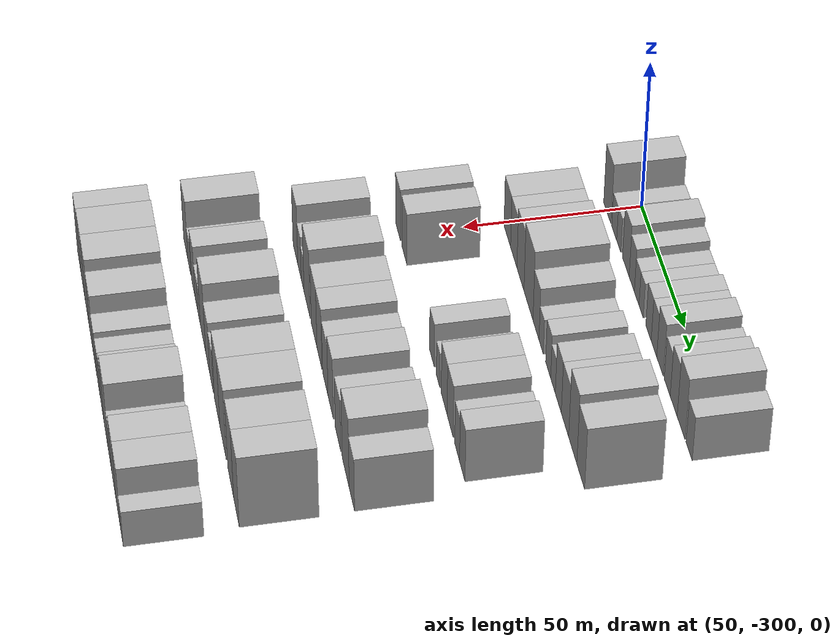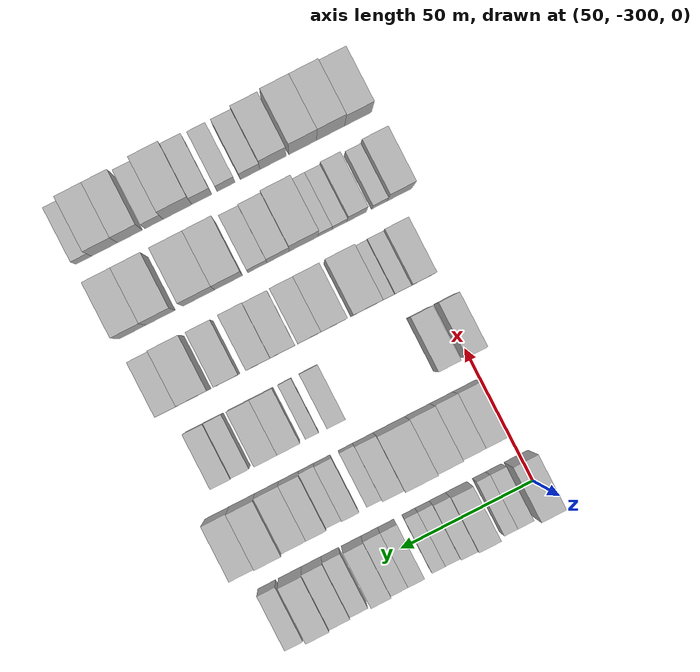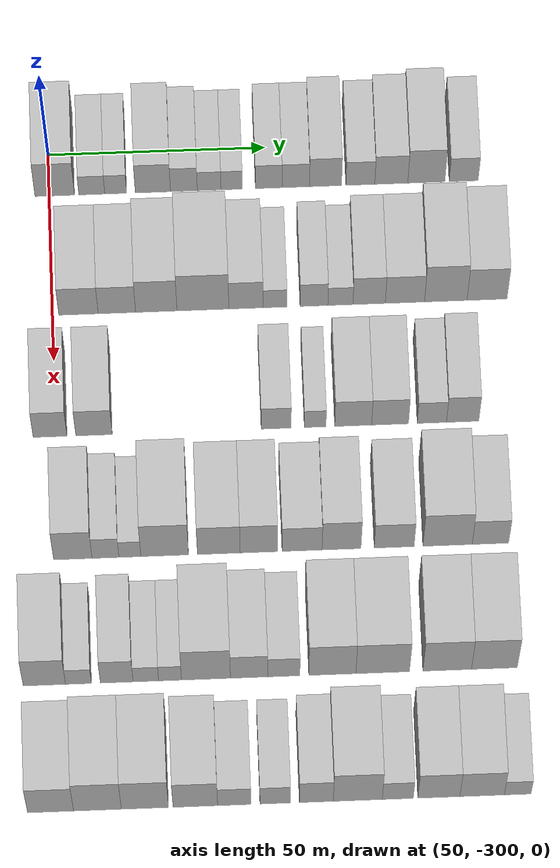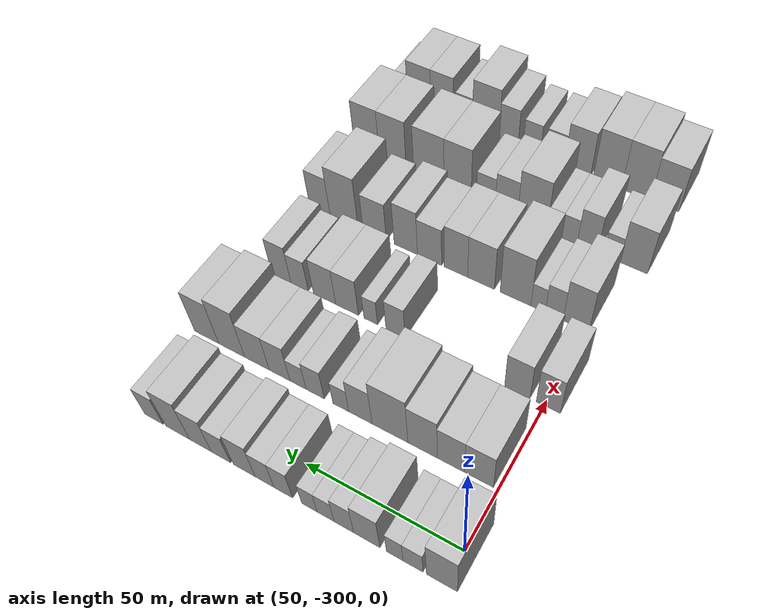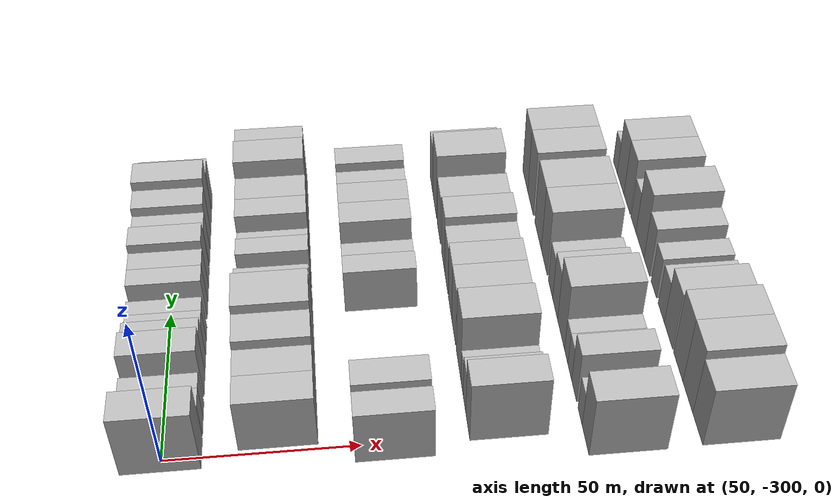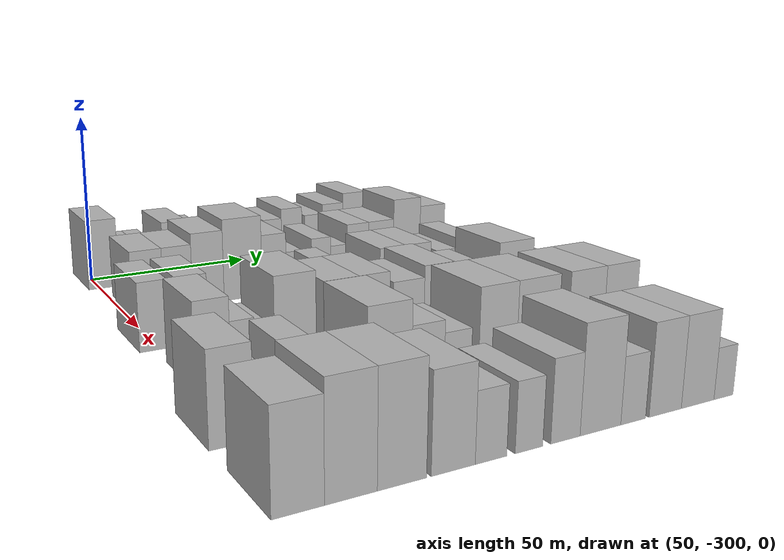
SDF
<sdf version="1.6">
 <world name="default">
  <model name="building_24">
   <static>1</static>
   <pose>50.0000 -298.7586 0 0.000000 0.000000 0.000000</pose>
   <link name="link">
    <pose>0 0 10.50 0 0 0</pose>
    <collision name="collision"><geometry><box><size>20.0000 9.0917 21.0000</size></box></geometry></collision>
    <visual name="visual">
     <cast_shadows>0</cast_shadows>
     <geometry><box><size>20.0000 9.0917 21.0000</size></box></geometry>
     <material>
      <script>
       <uri>model://HANNAS_wall/materials/scripts</uri>
       <uri>model://HANNAS_wall/materials/textures</uri>
       <name>vrc/HANNAS_wall</name>
      </script>
     </material>
    </visual>
   </link>
  </model>
  <model name="building_25">
   <static>1</static>
   <pose>50.0000 -290.2363 0 0.000000 0.000000 0.000000</pose>
   <link name="link">
    <pose>0 0 6.00 0 0 0</pose>
    <collision name="collision"><geometry><box><size>20.0000 5.9530 12.0000</size></box></geometry></collision>
    <visual name="visual">
     <cast_shadows>0</cast_shadows>
     <geometry><box><size>20.0000 5.9530 12.0000</size></box></geometry>
     <material>
      <script>
       <uri>model://HANNAS_wall/materials/scripts</uri>
       <uri>model://HANNAS_wall/materials/textures</uri>
       <name>vrc/HANNAS_wall</name>
      </script>
     </material>
    </visual>
   </link>
  </model>
  <model name="building_26">
   <static>1</static>
   <pose>50.0000 -284.7391 0 0.000000 0.000000 0.000000</pose>
   <link name="link">
    <pose>0 0 6.00 0 0 0</pose>
    <collision name="collision"><geometry><box><size>20.0000 5.0415 12.0000</size></box></geometry></collision>
    <visual name="visual">
     <cast_shadows>0</cast_shadows>
     <geometry><box><size>20.0000 5.0415 12.0000</size></box></geometry>
     <material>
      <script>
       <uri>model://HANNAS_wall/materials/scripts</uri>
       <uri>model://HANNAS_wall/materials/textures</uri>
       <name>vrc/HANNAS_wall</name>
      </script>
     </material>
    </visual>
   </link>
  </model>
  <model name="building_27">
   <static>1</static>
   <pose>50.0000 -276.1735 0 0.000000 0.000000 0.000000</pose>
   <link name="link">
    <pose>0 0 9.00 0 0 0</pose>
    <collision name="collision"><geometry><box><size>20.0000 8.0896 18.0000</size></box></geometry></collision>
    <visual name="visual">
     <cast_shadows>0</cast_shadows>
     <geometry><box><size>20.0000 8.0896 18.0000</size></box></geometry>
     <material>
      <script>
       <uri>model://HANNAS_wall/materials/scripts</uri>
       <uri>model://HANNAS_wall/materials/textures</uri>
       <name>vrc/HANNAS_wall</name>
      </script>
     </material>
    </visual>
   </link>
  </model>
  <model name="building_28">
   <static>1</static>
   <pose>50.0000 -269.0401 0 0.000000 0.000000 0.000000</pose>
   <link name="link">
    <pose>0 0 7.50 0 0 0</pose>
    <collision name="collision"><geometry><box><size>20.0000 6.1773 15.0000</size></box></geometry></collision>
    <visual name="visual">
     <cast_shadows>0</cast_shadows>
     <geometry><box><size>20.0000 6.1773 15.0000</size></box></geometry>
     <material>
      <script>
       <uri>model://HANNAS_wall/materials/scripts</uri>
       <uri>model://HANNAS_wall/materials/textures</uri>
       <name>vrc/HANNAS_wall</name>
      </script>
     </material>
    </visual>
   </link>
  </model>
  <model name="building_29">
   <static>1</static>
   <pose>50.0000 -263.2228 0 0.000000 0.000000 0.000000</pose>
   <link name="link">
    <pose>0 0 6.00 0 0 0</pose>
    <collision name="collision"><geometry><box><size>20.0000 5.4572 12.0000</size></box></geometry></collision>
    <visual name="visual">
     <cast_shadows>0</cast_shadows>
     <geometry><box><size>20.0000 5.4572 12.0000</size></box></geometry>
     <material>
      <script>
       <uri>model://HANNAS_wall/materials/scripts</uri>
       <uri>model://HANNAS_wall/materials/textures</uri>
       <name>vrc/HANNAS_wall</name>
      </script>
     </material>
    </visual>
   </link>
  </model>
  <model name="building_30">
   <static>1</static>
   <pose>50.0000 -258.0266 0 0.000000 0.000000 0.000000</pose>
   <link name="link">
    <pose>0 0 6.00 0 0 0</pose>
    <collision name="collision"><geometry><box><size>20.0000 4.9352 12.0000</size></box></geometry></collision>
    <visual name="visual">
     <cast_shadows>0</cast_shadows>
     <geometry><box><size>20.0000 4.9352 12.0000</size></box></geometry>
     <material>
      <script>
       <uri>model://HANNAS_wall/materials/scripts</uri>
       <uri>model://HANNAS_wall/materials/textures</uri>
       <name>vrc/HANNAS_wall</name>
      </script>
     </material>
    </visual>
   </link>
  </model>
  <model name="building_31">
   <static>1</static>
   <pose>50.0000 -249.4952 0 0.000000 0.000000 0.000000</pose>
   <link name="link">
    <pose>0 0 7.50 0 0 0</pose>
    <collision name="collision"><geometry><box><size>20.0000 6.1274 15.0000</size></box></geometry></collision>
    <visual name="visual">
     <cast_shadows>0</cast_shadows>
     <geometry><box><size>20.0000 6.1274 15.0000</size></box></geometry>
     <material>
      <script>
       <uri>model://HANNAS_wall/materials/scripts</uri>
       <uri>model://HANNAS_wall/materials/textures</uri>
       <name>vrc/HANNAS_wall</name>
      </script>
     </material>
    </visual>
   </link>
  </model>
  <model name="building_32">
   <static>1</static>
   <pose>50.0000 -243.2692 0 0.000000 0.000000 0.000000</pose>
   <link name="link">
    <pose>0 0 7.50 0 0 0</pose>
    <collision name="collision"><geometry><box><size>20.0000 6.3247 15.0000</size></box></geometry></collision>
    <visual name="visual">
     <cast_shadows>0</cast_shadows>
     <geometry><box><size>20.0000 6.3247 15.0000</size></box></geometry>
     <material>
      <script>
       <uri>model://HANNAS_wall/materials/scripts</uri>
       <uri>model://HANNAS_wall/materials/textures</uri>
       <name>vrc/HANNAS_wall</name>
      </script>
     </material>
    </visual>
   </link>
  </model>
  <model name="building_33">
   <static>1</static>
   <pose>50.0000 -236.4160 0 0.000000 0.000000 0.000000</pose>
   <link name="link">
    <pose>0 0 9.00 0 0 0</pose>
    <collision name="collision"><geometry><box><size>20.0000 7.3816 18.0000</size></box></geometry></collision>
    <visual name="visual">
     <cast_shadows>0</cast_shadows>
     <geometry><box><size>20.0000 7.3816 18.0000</size></box></geometry>
     <material>
      <script>
       <uri>model://HANNAS_wall/materials/scripts</uri>
       <uri>model://HANNAS_wall/materials/textures</uri>
       <name>vrc/HANNAS_wall</name>
      </script>
     </material>
    </visual>
   </link>
  </model>
  <model name="building_34">
   <static>1</static>
   <pose>50.0000 -228.4017 0 0.000000 0.000000 0.000000</pose>
   <link name="link">
    <pose>0 0 7.50 0 0 0</pose>
    <collision name="collision"><geometry><box><size>20.0000 6.6470 15.0000</size></box></geometry></collision>
    <visual name="visual">
     <cast_shadows>0</cast_shadows>
     <geometry><box><size>20.0000 6.6470 15.0000</size></box></geometry>
     <material>
      <script>
       <uri>model://HANNAS_wall/materials/scripts</uri>
       <uri>model://HANNAS_wall/materials/textures</uri>
       <name>vrc/HANNAS_wall</name>
      </script>
     </material>
    </visual>
   </link>
  </model>
  <model name="building_35">
   <static>1</static>
   <pose>50.0000 -221.2696 0 0.000000 0.000000 0.000000</pose>
   <link name="link">
    <pose>0 0 9.00 0 0 0</pose>
    <collision name="collision"><geometry><box><size>20.0000 7.6173 18.0000</size></box></geometry></collision>
    <visual name="visual">
     <cast_shadows>0</cast_shadows>
     <geometry><box><size>20.0000 7.6173 18.0000</size></box></geometry>
     <material>
      <script>
       <uri>model://HANNAS_wall/materials/scripts</uri>
       <uri>model://HANNAS_wall/materials/textures</uri>
       <name>vrc/HANNAS_wall</name>
      </script>
     </material>
    </visual>
   </link>
  </model>
  <model name="building_36">
   <static>1</static>
   <pose>50.0000 -213.1913 0 0.000000 0.000000 0.000000</pose>
   <link name="link">
    <pose>0 0 10.50 0 0 0</pose>
    <collision name="collision"><geometry><box><size>20.0000 8.5393 21.0000</size></box></geometry></collision>
    <visual name="visual">
     <cast_shadows>0</cast_shadows>
     <geometry><box><size>20.0000 8.5393 21.0000</size></box></geometry>
     <material>
      <script>
       <uri>model://HANNAS_wall/materials/scripts</uri>
       <uri>model://HANNAS_wall/materials/textures</uri>
       <name>vrc/HANNAS_wall</name>
      </script>
     </material>
    </visual>
   </link>
  </model>
  <model name="building_37">
   <static>1</static>
   <pose>50.0000 -204.5860 0 0.000000 0.000000 0.000000</pose>
   <link name="link">
    <pose>0 0 7.50 0 0 0</pose>
    <collision name="collision"><geometry><box><size>20.0000 6.6712 15.0000</size></box></geometry></collision>
    <visual name="visual">
     <cast_shadows>0</cast_shadows>
     <geometry><box><size>20.0000 6.6712 15.0000</size></box></geometry>
     <material>
      <script>
       <uri>model://HANNAS_wall/materials/scripts</uri>
       <uri>model://HANNAS_wall/materials/textures</uri>
       <name>vrc/HANNAS_wall</name>
      </script>
     </material>
    </visual>
   </link>
  </model>
  <model name="building_146">
   <static>1</static>
   <pose>79.0000 -294.0784 0 0.000000 0.000000 0.000000</pose>
   <link name="link">
    <pose>0 0 9.00 0 0 0</pose>
    <collision name="collision"><geometry><box><size>20.0000 8.9752 18.0000</size></box></geometry></collision>
    <visual name="visual">
     <cast_shadows>0</cast_shadows>
     <geometry><box><size>20.0000 8.9752 18.0000</size></box></geometry>
     <material>
      <script>
       <uri>model://HANNAS_wall/materials/scripts</uri>
       <uri>model://HANNAS_wall/materials/textures</uri>
       <name>vrc/HANNAS_wall</name>
      </script>
     </material>
    </visual>
   </link>
  </model>
  <model name="building_147">
   <static>1</static>
   <pose>79.0000 -285.3129 0 0.000000 0.000000 0.000000</pose>
   <link name="link">
    <pose>0 0 9.00 0 0 0</pose>
    <collision name="collision"><geometry><box><size>20.0000 8.5556 18.0000</size></box></geometry></collision>
    <visual name="visual">
     <cast_shadows>0</cast_shadows>
     <geometry><box><size>20.0000 8.5556 18.0000</size></box></geometry>
     <material>
      <script>
       <uri>model://HANNAS_wall/materials/scripts</uri>
       <uri>model://HANNAS_wall/materials/textures</uri>
       <name>vrc/HANNAS_wall</name>
      </script>
     </material>
    </visual>
   </link>
  </model>
  <model name="building_148">
   <static>1</static>
   <pose>79.0000 -276.3026 0 0.000000 0.000000 0.000000</pose>
   <link name="link">
    <pose>0 0 10.50 0 0 0</pose>
    <collision name="collision"><geometry><box><size>20.0000 9.4650 21.0000</size></box></geometry></collision>
    <visual name="visual">
     <cast_shadows>0</cast_shadows>
     <geometry><box><size>20.0000 9.4650 21.0000</size></box></geometry>
     <material>
      <script>
       <uri>model://HANNAS_wall/materials/scripts</uri>
       <uri>model://HANNAS_wall/materials/textures</uri>
       <name>vrc/HANNAS_wall</name>
      </script>
     </material>
    </visual>
   </link>
  </model>
  <model name="building_149">
   <static>1</static>
   <pose>79.0000 -265.6453 0 0.000000 0.000000 0.000000</pose>
   <link name="link">
    <pose>0 0 12.00 0 0 0</pose>
    <collision name="collision"><geometry><box><size>20.0000 11.8497 24.0000</size></box></geometry></collision>
    <visual name="visual">
     <cast_shadows>0</cast_shadows>
     <geometry><box><size>20.0000 11.8497 24.0000</size></box></geometry>
     <material>
      <script>
       <uri>model://HANNAS_wall/materials/scripts</uri>
       <uri>model://HANNAS_wall/materials/textures</uri>
       <name>vrc/HANNAS_wall</name>
      </script>
     </material>
    </visual>
   </link>
  </model>
  <model name="building_150">
   <static>1</static>
   <pose>79.0000 -255.8022 0 0.000000 0.000000 0.000000</pose>
   <link name="link">
    <pose>0 0 9.00 0 0 0</pose>
    <collision name="collision"><geometry><box><size>20.0000 7.8365 18.0000</size></box></geometry></collision>
    <visual name="visual">
     <cast_shadows>0</cast_shadows>
     <geometry><box><size>20.0000 7.8365 18.0000</size></box></geometry>
     <material>
      <script>
       <uri>model://HANNAS_wall/materials/scripts</uri>
       <uri>model://HANNAS_wall/materials/textures</uri>
       <name>vrc/HANNAS_wall</name>
      </script>
     </material>
    </visual>
   </link>
  </model>
  <model name="building_151">
   <static>1</static>
   <pose>79.0000 -249.1581 0 0.000000 0.000000 0.000000</pose>
   <link name="link">
    <pose>0 0 6.00 0 0 0</pose>
    <collision name="collision"><geometry><box><size>20.0000 5.4517 12.0000</size></box></geometry></collision>
    <visual name="visual">
     <cast_shadows>0</cast_shadows>
     <geometry><box><size>20.0000 5.4517 12.0000</size></box></geometry>
     <material>
      <script>
       <uri>model://HANNAS_wall/materials/scripts</uri>
       <uri>model://HANNAS_wall/materials/textures</uri>
       <name>vrc/HANNAS_wall</name>
      </script>
     </material>
    </visual>
   </link>
  </model>
  <model name="building_152">
   <static>1</static>
   <pose>79.0000 -240.2543 0 0.000000 0.000000 0.000000</pose>
   <link name="link">
    <pose>0 0 7.50 0 0 0</pose>
    <collision name="collision"><geometry><box><size>20.0000 6.3560 15.0000</size></box></geometry></collision>
    <visual name="visual">
     <cast_shadows>0</cast_shadows>
     <geometry><box><size>20.0000 6.3560 15.0000</size></box></geometry>
     <material>
      <script>
       <uri>model://HANNAS_wall/materials/scripts</uri>
       <uri>model://HANNAS_wall/materials/textures</uri>
       <name>vrc/HANNAS_wall</name>
      </script>
     </material>
    </visual>
   </link>
  </model>
  <model name="building_153">
   <static>1</static>
   <pose>79.0000 -234.2105 0 0.000000 0.000000 0.000000</pose>
   <link name="link">
    <pose>0 0 6.00 0 0 0</pose>
    <collision name="collision"><geometry><box><size>20.0000 5.7316 12.0000</size></box></geometry></collision>
    <visual name="visual">
     <cast_shadows>0</cast_shadows>
     <geometry><box><size>20.0000 5.7316 12.0000</size></box></geometry>
     <material>
      <script>
       <uri>model://HANNAS_wall/materials/scripts</uri>
       <uri>model://HANNAS_wall/materials/textures</uri>
       <name>vrc/HANNAS_wall</name>
      </script>
     </material>
    </visual>
   </link>
  </model>
  <model name="building_154">
   <static>1</static>
   <pose>79.0000 -227.6428 0 0.000000 0.000000 0.000000</pose>
   <link name="link">
    <pose>0 0 9.00 0 0 0</pose>
    <collision name="collision"><geometry><box><size>20.0000 7.4039 18.0000</size></box></geometry></collision>
    <visual name="visual">
     <cast_shadows>0</cast_shadows>
     <geometry><box><size>20.0000 7.4039 18.0000</size></box></geometry>
     <material>
      <script>
       <uri>model://HANNAS_wall/materials/scripts</uri>
       <uri>model://HANNAS_wall/materials/textures</uri>
       <name>vrc/HANNAS_wall</name>
      </script>
     </material>
    </visual>
   </link>
  </model>
  <model name="building_155">
   <static>1</static>
   <pose>79.0000 -219.4557 0 0.000000 0.000000 0.000000</pose>
   <link name="link">
    <pose>0 0 9.00 0 0 0</pose>
    <collision name="collision"><geometry><box><size>20.0000 8.9703 18.0000</size></box></geometry></collision>
    <visual name="visual">
     <cast_shadows>0</cast_shadows>
     <geometry><box><size>20.0000 8.9703 18.0000</size></box></geometry>
     <material>
      <script>
       <uri>model://HANNAS_wall/materials/scripts</uri>
       <uri>model://HANNAS_wall/materials/textures</uri>
       <name>vrc/HANNAS_wall</name>
      </script>
     </material>
    </visual>
   </link>
  </model>
  <model name="building_156">
   <static>1</static>
   <pose>79.0000 -210.1051 0 0.000000 0.000000 0.000000</pose>
   <link name="link">
    <pose>0 0 12.00 0 0 0</pose>
    <collision name="collision"><geometry><box><size>20.0000 9.7311 24.0000</size></box></geometry></collision>
    <visual name="visual">
     <cast_shadows>0</cast_shadows>
     <geometry><box><size>20.0000 9.7311 24.0000</size></box></geometry>
     <material>
      <script>
       <uri>model://HANNAS_wall/materials/scripts</uri>
       <uri>model://HANNAS_wall/materials/textures</uri>
       <name>vrc/HANNAS_wall</name>
      </script>
     </material>
    </visual>
   </link>
  </model>
  <model name="building_157">
   <static>1</static>
   <pose>79.0000 -200.6709 0 0.000000 0.000000 0.000000</pose>
   <link name="link">
    <pose>0 0 10.50 0 0 0</pose>
    <collision name="collision"><geometry><box><size>20.0000 9.1374 21.0000</size></box></geometry></collision>
    <visual name="visual">
     <cast_shadows>0</cast_shadows>
     <geometry><box><size>20.0000 9.1374 21.0000</size></box></geometry>
     <material>
      <script>
       <uri>model://HANNAS_wall/materials/scripts</uri>
       <uri>model://HANNAS_wall/materials/textures</uri>
       <name>vrc/HANNAS_wall</name>
      </script>
     </material>
    </visual>
   </link>
  </model>
  <model name="building_265">
   <static>1</static>
   <pose>108.0000 -301.2785 0 0.000000 0.000000 0.000000</pose>
   <link name="link">
    <pose>0 0 9.00 0 0 0</pose>
    <collision name="collision"><geometry><box><size>20.0000 7.6698 18.0000</size></box></geometry></collision>
    <visual name="visual">
     <cast_shadows>0</cast_shadows>
     <geometry><box><size>20.0000 7.6698 18.0000</size></box></geometry>
     <material>
      <script>
       <uri>model://HANNAS_wall/materials/scripts</uri>
       <uri>model://HANNAS_wall/materials/textures</uri>
       <name>vrc/HANNAS_wall</name>
      </script>
     </material>
    </visual>
   </link>
  </model>
  <model name="building_266">
   <static>1</static>
   <pose>108.0000 -291.3188 0 0.000000 0.000000 0.000000</pose>
   <link name="link">
    <pose>0 0 9.00 0 0 0</pose>
    <collision name="collision"><geometry><box><size>20.0000 8.2495 18.0000</size></box></geometry></collision>
    <visual name="visual">
     <cast_shadows>0</cast_shadows>
     <geometry><box><size>20.0000 8.2495 18.0000</size></box></geometry>
     <material>
      <script>
       <uri>model://HANNAS_wall/materials/scripts</uri>
       <uri>model://HANNAS_wall/materials/textures</uri>
       <name>vrc/HANNAS_wall</name>
      </script>
     </material>
    </visual>
   </link>
  </model>
  <model name="building_267">
   <static>1</static>
   <pose>108.0000 -250.0105 0 0.000000 0.000000 0.000000</pose>
   <link name="link">
    <pose>0 0 7.50 0 0 0</pose>
    <collision name="collision"><geometry><box><size>20.0000 6.7890 15.0000</size></box></geometry></collision>
    <visual name="visual">
     <cast_shadows>0</cast_shadows>
     <geometry><box><size>20.0000 6.7890 15.0000</size></box></geometry>
     <material>
      <script>
       <uri>model://HANNAS_wall/materials/scripts</uri>
       <uri>model://HANNAS_wall/materials/textures</uri>
       <name>vrc/HANNAS_wall</name>
      </script>
     </material>
    </visual>
   </link>
  </model>
  <model name="building_268">
   <static>1</static>
   <pose>108.0000 -241.1644 0 0.000000 0.000000 0.000000</pose>
   <link name="link">
    <pose>0 0 6.00 0 0 0</pose>
    <collision name="collision"><geometry><box><size>20.0000 4.9033 12.0000</size></box></geometry></collision>
    <visual name="visual">
     <cast_shadows>0</cast_shadows>
     <geometry><box><size>20.0000 4.9033 12.0000</size></box></geometry>
     <material>
      <script>
       <uri>model://HANNAS_wall/materials/scripts</uri>
       <uri>model://HANNAS_wall/materials/textures</uri>
       <name>vrc/HANNAS_wall</name>
      </script>
     </material>
    </visual>
   </link>
  </model>
  <model name="building_269">
   <static>1</static>
   <pose>108.0000 -232.5304 0 0.000000 0.000000 0.000000</pose>
   <link name="link">
    <pose>0 0 9.00 0 0 0</pose>
    <collision name="collision"><geometry><box><size>20.0000 8.3646 18.0000</size></box></geometry></collision>
    <visual name="visual">
     <cast_shadows>0</cast_shadows>
     <geometry><box><size>20.0000 8.3646 18.0000</size></box></geometry>
     <material>
      <script>
       <uri>model://HANNAS_wall/materials/scripts</uri>
       <uri>model://HANNAS_wall/materials/textures</uri>
       <name>vrc/HANNAS_wall</name>
      </script>
     </material>
    </visual>
   </link>
  </model>
  <model name="building_270">
   <static>1</static>
   <pose>108.0000 -224.1655 0 0.000000 0.000000 0.000000</pose>
   <link name="link">
    <pose>0 0 9.00 0 0 0</pose>
    <collision name="collision"><geometry><box><size>20.0000 8.3653 18.0000</size></box></geometry></collision>
    <visual name="visual">
     <cast_shadows>0</cast_shadows>
     <geometry><box><size>20.0000 8.3653 18.0000</size></box></geometry>
     <material>
      <script>
       <uri>model://HANNAS_wall/materials/scripts</uri>
       <uri>model://HANNAS_wall/materials/textures</uri>
       <name>vrc/HANNAS_wall</name>
      </script>
     </material>
    </visual>
   </link>
  </model>
  <model name="building_271">
   <static>1</static>
   <pose>108.0000 -214.6657 0 0.000000 0.000000 0.000000</pose>
   <link name="link">
    <pose>0 0 7.50 0 0 0</pose>
    <collision name="collision"><geometry><box><size>20.0000 6.6344 15.0000</size></box></geometry></collision>
    <visual name="visual">
     <cast_shadows>0</cast_shadows>
     <geometry><box><size>20.0000 6.6344 15.0000</size></box></geometry>
     <material>
      <script>
       <uri>model://HANNAS_wall/materials/scripts</uri>
       <uri>model://HANNAS_wall/materials/textures</uri>
       <name>vrc/HANNAS_wall</name>
      </script>
     </material>
    </visual>
   </link>
  </model>
  <model name="building_272">
   <static>1</static>
   <pose>108.0000 -207.6847 0 0.000000 0.000000 0.000000</pose>
   <link name="link">
    <pose>0 0 9.00 0 0 0</pose>
    <collision name="collision"><geometry><box><size>20.0000 7.3277 18.0000</size></box></geometry></collision>
    <visual name="visual">
     <cast_shadows>0</cast_shadows>
     <geometry><box><size>20.0000 7.3277 18.0000</size></box></geometry>
     <material>
      <script>
       <uri>model://HANNAS_wall/materials/scripts</uri>
       <uri>model://HANNAS_wall/materials/textures</uri>
       <name>vrc/HANNAS_wall</name>
      </script>
     </material>
    </visual>
   </link>
  </model>
  <model name="building_373">
   <static>1</static>
   <pose>137.0000 -296.8765 0 0.000000 0.000000 0.000000</pose>
   <link name="link">
    <pose>0 0 10.50 0 0 0</pose>
    <collision name="collision"><geometry><box><size>20.0000 8.6434 21.0000</size></box></geometry></collision>
    <visual name="visual">
     <cast_shadows>0</cast_shadows>
     <geometry><box><size>20.0000 8.6434 21.0000</size></box></geometry>
     <material>
      <script>
       <uri>model://HANNAS_wall/materials/scripts</uri>
       <uri>model://HANNAS_wall/materials/textures</uri>
       <name>vrc/HANNAS_wall</name>
      </script>
     </material>
    </visual>
   </link>
  </model>
  <model name="building_374">
   <static>1</static>
   <pose>137.0000 -289.5353 0 0.000000 0.000000 0.000000</pose>
   <link name="link">
    <pose>0 0 7.50 0 0 0</pose>
    <collision name="collision"><geometry><box><size>20.0000 6.0391 15.0000</size></box></geometry></collision>
    <visual name="visual">
     <cast_shadows>0</cast_shadows>
     <geometry><box><size>20.0000 6.0391 15.0000</size></box></geometry>
     <material>
      <script>
       <uri>model://HANNAS_wall/materials/scripts</uri>
       <uri>model://HANNAS_wall/materials/textures</uri>
       <name>vrc/HANNAS_wall</name>
      </script>
     </material>
    </visual>
   </link>
  </model>
  <model name="building_375">
   <static>1</static>
   <pose>137.0000 -284.0457 0 0.000000 0.000000 0.000000</pose>
   <link name="link">
    <pose>0 0 6.00 0 0 0</pose>
    <collision name="collision"><geometry><box><size>20.0000 4.9401 12.0000</size></box></geometry></collision>
    <visual name="visual">
     <cast_shadows>0</cast_shadows>
     <geometry><box><size>20.0000 4.9401 12.0000</size></box></geometry>
     <material>
      <script>
       <uri>model://HANNAS_wall/materials/scripts</uri>
       <uri>model://HANNAS_wall/materials/textures</uri>
       <name>vrc/HANNAS_wall</name>
      </script>
     </material>
    </visual>
   </link>
  </model>
  <model name="building_376">
   <static>1</static>
   <pose>137.0000 -276.2120 0 0.000000 0.000000 0.000000</pose>
   <link name="link">
    <pose>0 0 12.00 0 0 0</pose>
    <collision name="collision"><geometry><box><size>20.0000 10.7271 24.0000</size></box></geometry></collision>
    <visual name="visual">
     <cast_shadows>0</cast_shadows>
     <geometry><box><size>20.0000 10.7271 24.0000</size></box></geometry>
     <material>
      <script>
       <uri>model://HANNAS_wall/materials/scripts</uri>
       <uri>model://HANNAS_wall/materials/textures</uri>
       <name>vrc/HANNAS_wall</name>
      </script>
     </material>
    </visual>
   </link>
  </model>
  <model name="building_377">
   <static>1</static>
   <pose>137.0000 -264.0426 0 0.000000 0.000000 0.000000</pose>
   <link name="link">
    <pose>0 0 10.50 0 0 0</pose>
    <collision name="collision"><geometry><box><size>20.0000 9.6117 21.0000</size></box></geometry></collision>
    <visual name="visual">
     <cast_shadows>0</cast_shadows>
     <geometry><box><size>20.0000 9.6117 21.0000</size></box></geometry>
     <material>
      <script>
       <uri>model://HANNAS_wall/materials/scripts</uri>
       <uri>model://HANNAS_wall/materials/textures</uri>
       <name>vrc/HANNAS_wall</name>
      </script>
     </material>
    </visual>
   </link>
  </model>
  <model name="building_378">
   <static>1</static>
   <pose>137.0000 -255.0092 0 0.000000 0.000000 0.000000</pose>
   <link name="link">
    <pose>0 0 10.50 0 0 0</pose>
    <collision name="collision"><geometry><box><size>20.0000 8.4551 21.0000</size></box></geometry></collision>
    <visual name="visual">
     <cast_shadows>0</cast_shadows>
     <geometry><box><size>20.0000 8.4551 21.0000</size></box></geometry>
     <material>
      <script>
       <uri>model://HANNAS_wall/materials/scripts</uri>
       <uri>model://HANNAS_wall/materials/textures</uri>
       <name>vrc/HANNAS_wall</name>
      </script>
     </material>
    </visual>
   </link>
  </model>
  <model name="building_379">
   <static>1</static>
   <pose>137.0000 -245.2827 0 0.000000 0.000000 0.000000</pose>
   <link name="link">
    <pose>0 0 9.00 0 0 0</pose>
    <collision name="collision"><geometry><box><size>20.0000 8.9979 18.0000</size></box></geometry></collision>
    <visual name="visual">
     <cast_shadows>0</cast_shadows>
     <geometry><box><size>20.0000 8.9979 18.0000</size></box></geometry>
     <material>
      <script>
       <uri>model://HANNAS_wall/materials/scripts</uri>
       <uri>model://HANNAS_wall/materials/textures</uri>
       <name>vrc/HANNAS_wall</name>
      </script>
     </material>
    </visual>
   </link>
  </model>
  <model name="building_380">
   <static>1</static>
   <pose>137.0000 -236.4075 0 0.000000 0.000000 0.000000</pose>
   <link name="link">
    <pose>0 0 10.50 0 0 0</pose>
    <collision name="collision"><geometry><box><size>20.0000 8.7525 21.0000</size></box></geometry></collision>
    <visual name="visual">
     <cast_shadows>0</cast_shadows>
     <geometry><box><size>20.0000 8.7525 21.0000</size></box></geometry>
     <material>
      <script>
       <uri>model://HANNAS_wall/materials/scripts</uri>
       <uri>model://HANNAS_wall/materials/textures</uri>
       <name>vrc/HANNAS_wall</name>
      </script>
     </material>
    </visual>
   </link>
  </model>
  <model name="building_381">
   <static>1</static>
   <pose>137.0000 -224.5460 0 0.000000 0.000000 0.000000</pose>
   <link name="link">
    <pose>0 0 9.00 0 0 0</pose>
    <collision name="collision"><geometry><box><size>20.0000 8.9705 18.0000</size></box></geometry></collision>
    <visual name="visual">
     <cast_shadows>0</cast_shadows>
     <geometry><box><size>20.0000 8.9705 18.0000</size></box></geometry>
     <material>
      <script>
       <uri>model://HANNAS_wall/materials/scripts</uri>
       <uri>model://HANNAS_wall/materials/textures</uri>
       <name>vrc/HANNAS_wall</name>
      </script>
     </material>
    </visual>
   </link>
  </model>
  <model name="building_382">
   <static>1</static>
   <pose>137.0000 -212.5102 0 0.000000 0.000000 0.000000</pose>
   <link name="link">
    <pose>0 0 12.00 0 0 0</pose>
    <collision name="collision"><geometry><box><size>20.0000 11.1011 24.0000</size></box></geometry></collision>
    <visual name="visual">
     <cast_shadows>0</cast_shadows>
     <geometry><box><size>20.0000 11.1011 24.0000</size></box></geometry>
     <material>
      <script>
       <uri>model://HANNAS_wall/materials/scripts</uri>
       <uri>model://HANNAS_wall/materials/textures</uri>
       <name>vrc/HANNAS_wall</name>
      </script>
     </material>
    </visual>
   </link>
  </model>
  <model name="building_383">
   <static>1</static>
   <pose>137.0000 -202.8552 0 0.000000 0.000000 0.000000</pose>
   <link name="link">
    <pose>0 0 9.00 0 0 0</pose>
    <collision name="collision"><geometry><box><size>20.0000 8.2090 18.0000</size></box></geometry></collision>
    <visual name="visual">
     <cast_shadows>0</cast_shadows>
     <geometry><box><size>20.0000 8.2090 18.0000</size></box></geometry>
     <material>
      <script>
       <uri>model://HANNAS_wall/materials/scripts</uri>
       <uri>model://HANNAS_wall/materials/textures</uri>
       <name>vrc/HANNAS_wall</name>
      </script>
     </material>
    </visual>
   </link>
  </model>
  <model name="building_481">
   <static>1</static>
   <pose>166.0000 -304.0010 0 0.000000 0.000000 0.000000</pose>
   <link name="link">
    <pose>0 0 10.50 0 0 0</pose>
    <collision name="collision"><geometry><box><size>20.0000 9.4597 21.0000</size></box></geometry></collision>
    <visual name="visual">
     <cast_shadows>0</cast_shadows>
     <geometry><box><size>20.0000 9.4597 21.0000</size></box></geometry>
     <material>
      <script>
       <uri>model://HANNAS_wall/materials/scripts</uri>
       <uri>model://HANNAS_wall/materials/textures</uri>
       <name>vrc/HANNAS_wall</name>
      </script>
     </material>
    </visual>
   </link>
  </model>
  <model name="building_482">
   <static>1</static>
   <pose>166.0000 -296.3795 0 0.000000 0.000000 0.000000</pose>
   <link name="link">
    <pose>0 0 6.00 0 0 0</pose>
    <collision name="collision"><geometry><box><size>20.0000 5.7833 12.0000</size></box></geometry></collision>
    <visual name="visual">
     <cast_shadows>0</cast_shadows>
     <geometry><box><size>20.0000 5.7833 12.0000</size></box></geometry>
     <material>
      <script>
       <uri>model://HANNAS_wall/materials/scripts</uri>
       <uri>model://HANNAS_wall/materials/textures</uri>
       <name>vrc/HANNAS_wall</name>
      </script>
     </material>
    </visual>
   </link>
  </model>
  <model name="building_483">
   <static>1</static>
   <pose>166.0000 -287.8462 0 0.000000 0.000000 0.000000</pose>
   <link name="link">
    <pose>0 0 9.00 0 0 0</pose>
    <collision name="collision"><geometry><box><size>20.0000 7.2832 18.0000</size></box></geometry></collision>
    <visual name="visual">
     <cast_shadows>0</cast_shadows>
     <geometry><box><size>20.0000 7.2832 18.0000</size></box></geometry>
     <material>
      <script>
       <uri>model://HANNAS_wall/materials/scripts</uri>
       <uri>model://HANNAS_wall/materials/textures</uri>
       <name>vrc/HANNAS_wall</name>
      </script>
     </material>
    </visual>
   </link>
  </model>
  <model name="building_484">
   <static>1</static>
   <pose>166.0000 -281.3510 0 0.000000 0.000000 0.000000</pose>
   <link name="link">
    <pose>0 0 6.00 0 0 0</pose>
    <collision name="collision"><geometry><box><size>20.0000 5.7073 12.0000</size></box></geometry></collision>
    <visual name="visual">
     <cast_shadows>0</cast_shadows>
     <geometry><box><size>20.0000 5.7073 12.0000</size></box></geometry>
     <material>
      <script>
       <uri>model://HANNAS_wall/materials/scripts</uri>
       <uri>model://HANNAS_wall/materials/textures</uri>
       <name>vrc/HANNAS_wall</name>
      </script>
     </material>
    </visual>
   </link>
  </model>
  <model name="building_485">
   <static>1</static>
   <pose>166.0000 -275.9363 0 0.000000 0.000000 0.000000</pose>
   <link name="link">
    <pose>0 0 6.00 0 0 0</pose>
    <collision name="collision"><geometry><box><size>20.0000 5.1221 12.0000</size></box></geometry></collision>
    <visual name="visual">
     <cast_shadows>0</cast_shadows>
     <geometry><box><size>20.0000 5.1221 12.0000</size></box></geometry>
     <material>
      <script>
       <uri>model://HANNAS_wall/materials/scripts</uri>
       <uri>model://HANNAS_wall/materials/textures</uri>
       <name>vrc/HANNAS_wall</name>
      </script>
     </material>
    </visual>
   </link>
  </model>
  <model name="building_486">
   <static>1</static>
   <pose>166.0000 -267.9130 0 0.000000 0.000000 0.000000</pose>
   <link name="link">
    <pose>0 0 12.00 0 0 0</pose>
    <collision name="collision"><geometry><box><size>20.0000 10.9243 24.0000</size></box></geometry></collision>
    <visual name="visual">
     <cast_shadows>0</cast_shadows>
     <geometry><box><size>20.0000 10.9243 24.0000</size></box></geometry>
     <material>
      <script>
       <uri>model://HANNAS_wall/materials/scripts</uri>
       <uri>model://HANNAS_wall/materials/textures</uri>
       <name>vrc/HANNAS_wall</name>
      </script>
     </material>
    </visual>
   </link>
  </model>
  <model name="building_487">
   <static>1</static>
   <pose>166.0000 -258.2713 0 0.000000 0.000000 0.000000</pose>
   <link name="link">
    <pose>0 0 9.00 0 0 0</pose>
    <collision name="collision"><geometry><box><size>20.0000 8.3591 18.0000</size></box></geometry></collision>
    <visual name="visual">
     <cast_shadows>0</cast_shadows>
     <geometry><box><size>20.0000 8.3591 18.0000</size></box></geometry>
     <material>
      <script>
       <uri>model://HANNAS_wall/materials/scripts</uri>
       <uri>model://HANNAS_wall/materials/textures</uri>
       <name>vrc/HANNAS_wall</name>
      </script>
     </material>
    </visual>
   </link>
  </model>
  <model name="building_488">
   <static>1</static>
   <pose>166.0000 -250.5109 0 0.000000 0.000000 0.000000</pose>
   <link name="link">
    <pose>0 0 7.50 0 0 0</pose>
    <collision name="collision"><geometry><box><size>20.0000 7.1617 15.0000</size></box></geometry></collision>
    <visual name="visual">
     <cast_shadows>0</cast_shadows>
     <geometry><box><size>20.0000 7.1617 15.0000</size></box></geometry>
     <material>
      <script>
       <uri>model://HANNAS_wall/materials/scripts</uri>
       <uri>model://HANNAS_wall/materials/textures</uri>
       <name>vrc/HANNAS_wall</name>
      </script>
     </material>
    </visual>
   </link>
  </model>
  <model name="building_489">
   <static>1</static>
   <pose>166.0000 -239.6649 0 0.000000 0.000000 0.000000</pose>
   <link name="link">
    <pose>0 0 12.00 0 0 0</pose>
    <collision name="collision"><geometry><box><size>20.0000 10.5303 24.0000</size></box></geometry></collision>
    <visual name="visual">
     <cast_shadows>0</cast_shadows>
     <geometry><box><size>20.0000 10.5303 24.0000</size></box></geometry>
     <material>
      <script>
       <uri>model://HANNAS_wall/materials/scripts</uri>
       <uri>model://HANNAS_wall/materials/textures</uri>
       <name>vrc/HANNAS_wall</name>
      </script>
     </material>
    </visual>
   </link>
  </model>
  <model name="building_490">
   <static>1</static>
   <pose>166.0000 -228.4120 0 0.000000 0.000000 0.000000</pose>
   <link name="link">
    <pose>0 0 12.00 0 0 0</pose>
    <collision name="collision"><geometry><box><size>20.0000 11.9754 24.0000</size></box></geometry></collision>
    <visual name="visual">
     <cast_shadows>0</cast_shadows>
     <geometry><box><size>20.0000 11.9754 24.0000</size></box></geometry>
     <material>
      <script>
       <uri>model://HANNAS_wall/materials/scripts</uri>
       <uri>model://HANNAS_wall/materials/textures</uri>
       <name>vrc/HANNAS_wall</name>
      </script>
     </material>
    </visual>
   </link>
  </model>
  <model name="building_491">
   <static>1</static>
   <pose>166.0000 -213.9890 0 0.000000 0.000000 0.000000</pose>
   <link name="link">
    <pose>0 0 12.00 0 0 0</pose>
    <collision name="collision"><geometry><box><size>20.0000 10.8706 24.0000</size></box></geometry></collision>
    <visual name="visual">
     <cast_shadows>0</cast_shadows>
     <geometry><box><size>20.0000 10.8706 24.0000</size></box></geometry>
     <material>
      <script>
       <uri>model://HANNAS_wall/materials/scripts</uri>
       <uri>model://HANNAS_wall/materials/textures</uri>
       <name>vrc/HANNAS_wall</name>
      </script>
     </material>
    </visual>
   </link>
  </model>
  <model name="building_492">
   <static>1</static>
   <pose>166.0000 -203.4377 0 0.000000 0.000000 0.000000</pose>
   <link name="link">
    <pose>0 0 12.00 0 0 0</pose>
    <collision name="collision"><geometry><box><size>20.0000 10.2320 24.0000</size></box></geometry></collision>
    <visual name="visual">
     <cast_shadows>0</cast_shadows>
     <geometry><box><size>20.0000 10.2320 24.0000</size></box></geometry>
     <material>
      <script>
       <uri>model://HANNAS_wall/materials/scripts</uri>
       <uri>model://HANNAS_wall/materials/textures</uri>
       <name>vrc/HANNAS_wall</name>
      </script>
     </material>
    </visual>
   </link>
  </model>
  <model name="building_599">
   <static>1</static>
   <pose>195.0000 -303.3412 0 0.000000 0.000000 0.000000</pose>
   <link name="link">
    <pose>0 0 10.50 0 0 0</pose>
    <collision name="collision"><geometry><box><size>20.0000 10.1859 21.0000</size></box></geometry></collision>
    <visual name="visual">
     <cast_shadows>0</cast_shadows>
     <geometry><box><size>20.0000 10.1859 21.0000</size></box></geometry>
     <material>
      <script>
       <uri>model://HANNAS_wall/materials/scripts</uri>
       <uri>model://HANNAS_wall/materials/textures</uri>
       <name>vrc/HANNAS_wall</name>
      </script>
     </material>
    </visual>
   </link>
  </model>
  <model name="building_600">
   <static>1</static>
   <pose>195.0000 -292.9543 0 0.000000 0.000000 0.000000</pose>
   <link name="link">
    <pose>0 0 12.00 0 0 0</pose>
    <collision name="collision"><geometry><box><size>20.0000 10.5877 24.0000</size></box></geometry></collision>
    <visual name="visual">
     <cast_shadows>0</cast_shadows>
     <geometry><box><size>20.0000 10.5877 24.0000</size></box></geometry>
     <material>
      <script>
       <uri>model://HANNAS_wall/materials/scripts</uri>
       <uri>model://HANNAS_wall/materials/textures</uri>
       <name>vrc/HANNAS_wall</name>
      </script>
     </material>
    </visual>
   </link>
  </model>
  <model name="building_601">
   <static>1</static>
   <pose>195.0000 -282.4324 0 0.000000 0.000000 0.000000</pose>
   <link name="link">
    <pose>0 0 12.00 0 0 0</pose>
    <collision name="collision"><geometry><box><size>20.0000 10.4562 24.0000</size></box></geometry></collision>
    <visual name="visual">
     <cast_shadows>0</cast_shadows>
     <geometry><box><size>20.0000 10.4562 24.0000</size></box></geometry>
     <material>
      <script>
       <uri>model://HANNAS_wall/materials/scripts</uri>
       <uri>model://HANNAS_wall/materials/textures</uri>
       <name>vrc/HANNAS_wall</name>
      </script>
     </material>
    </visual>
   </link>
  </model>
  <model name="building_602">
   <static>1</static>
   <pose>195.0000 -271.2647 0 0.000000 0.000000 0.000000</pose>
   <link name="link">
    <pose>0 0 10.50 0 0 0</pose>
    <collision name="collision"><geometry><box><size>20.0000 9.8790 21.0000</size></box></geometry></collision>
    <visual name="visual">
     <cast_shadows>0</cast_shadows>
     <geometry><box><size>20.0000 9.8790 21.0000</size></box></geometry>
     <material>
      <script>
       <uri>model://HANNAS_wall/materials/scripts</uri>
       <uri>model://HANNAS_wall/materials/textures</uri>
       <name>vrc/HANNAS_wall</name>
      </script>
     </material>
    </visual>
   </link>
  </model>
  <model name="building_603">
   <static>1</static>
   <pose>195.0000 -262.6284 0 0.000000 0.000000 0.000000</pose>
   <link name="link">
    <pose>0 0 7.50 0 0 0</pose>
    <collision name="collision"><geometry><box><size>20.0000 7.3937 15.0000</size></box></geometry></collision>
    <visual name="visual">
     <cast_shadows>0</cast_shadows>
     <geometry><box><size>20.0000 7.3937 15.0000</size></box></geometry>
     <material>
      <script>
       <uri>model://HANNAS_wall/materials/scripts</uri>
       <uri>model://HANNAS_wall/materials/textures</uri>
       <name>vrc/HANNAS_wall</name>
      </script>
     </material>
    </visual>
   </link>
  </model>
  <model name="building_604">
   <static>1</static>
   <pose>195.0000 -253.5576 0 0.000000 0.000000 0.000000</pose>
   <link name="link">
    <pose>0 0 7.50 0 0 0</pose>
    <collision name="collision"><geometry><box><size>20.0000 6.7478 15.0000</size></box></geometry></collision>
    <visual name="visual">
     <cast_shadows>0</cast_shadows>
     <geometry><box><size>20.0000 6.7478 15.0000</size></box></geometry>
     <material>
      <script>
       <uri>model://HANNAS_wall/materials/scripts</uri>
       <uri>model://HANNAS_wall/materials/textures</uri>
       <name>vrc/HANNAS_wall</name>
      </script>
     </material>
    </visual>
   </link>
  </model>
  <model name="building_605">
   <static>1</static>
   <pose>195.0000 -244.4303 0 0.000000 0.000000 0.000000</pose>
   <link name="link">
    <pose>0 0 9.00 0 0 0</pose>
    <collision name="collision"><geometry><box><size>20.0000 7.5069 18.0000</size></box></geometry></collision>
    <visual name="visual">
     <cast_shadows>0</cast_shadows>
     <geometry><box><size>20.0000 7.5069 18.0000</size></box></geometry>
     <material>
      <script>
       <uri>model://HANNAS_wall/materials/scripts</uri>
       <uri>model://HANNAS_wall/materials/textures</uri>
       <name>vrc/HANNAS_wall</name>
      </script>
     </material>
    </visual>
   </link>
  </model>
  <model name="building_606">
   <static>1</static>
   <pose>195.0000 -235.2418 0 0.000000 0.000000 0.000000</pose>
   <link name="link">
    <pose>0 0 12.00 0 0 0</pose>
    <collision name="collision"><geometry><box><size>20.0000 10.8700 24.0000</size></box></geometry></collision>
    <visual name="visual">
     <cast_shadows>0</cast_shadows>
     <geometry><box><size>20.0000 10.8700 24.0000</size></box></geometry>
     <material>
      <script>
       <uri>model://HANNAS_wall/materials/scripts</uri>
       <uri>model://HANNAS_wall/materials/textures</uri>
       <name>vrc/HANNAS_wall</name>
      </script>
     </material>
    </visual>
   </link>
  </model>
  <model name="building_607">
   <static>1</static>
   <pose>195.0000 -226.3594 0 0.000000 0.000000 0.000000</pose>
   <link name="link">
    <pose>0 0 7.50 0 0 0</pose>
    <collision name="collision"><geometry><box><size>20.0000 6.8947 15.0000</size></box></geometry></collision>
    <visual name="visual">
     <cast_shadows>0</cast_shadows>
     <geometry><box><size>20.0000 6.8947 15.0000</size></box></geometry>
     <material>
      <script>
       <uri>model://HANNAS_wall/materials/scripts</uri>
       <uri>model://HANNAS_wall/materials/textures</uri>
       <name>vrc/HANNAS_wall</name>
      </script>
     </material>
    </visual>
   </link>
  </model>
  <model name="building_608">
   <static>1</static>
   <pose>195.0000 -217.2513 0 0.000000 0.000000 0.000000</pose>
   <link name="link">
    <pose>0 0 10.50 0 0 0</pose>
    <collision name="collision"><geometry><box><size>20.0000 9.3215 21.0000</size></box></geometry></collision>
    <visual name="visual">
     <cast_shadows>0</cast_shadows>
     <geometry><box><size>20.0000 9.3215 21.0000</size></box></geometry>
     <material>
      <script>
       <uri>model://HANNAS_wall/materials/scripts</uri>
       <uri>model://HANNAS_wall/materials/textures</uri>
       <name>vrc/HANNAS_wall</name>
      </script>
     </material>
    </visual>
   </link>
  </model>
  <model name="building_609">
   <static>1</static>
   <pose>195.0000 -207.6568 0 0.000000 0.000000 0.000000</pose>
   <link name="link">
    <pose>0 0 10.50 0 0 0</pose>
    <collision name="collision"><geometry><box><size>20.0000 9.8677 21.0000</size></box></geometry></collision>
    <visual name="visual">
     <cast_shadows>0</cast_shadows>
     <geometry><box><size>20.0000 9.8677 21.0000</size></box></geometry>
     <material>
      <script>
       <uri>model://HANNAS_wall/materials/scripts</uri>
       <uri>model://HANNAS_wall/materials/textures</uri>
       <name>vrc/HANNAS_wall</name>
      </script>
     </material>
    </visual>
   </link>
  </model>
  <model name="building_610">
   <static>1</static>
   <pose>195.0000 -199.7590 0 0.000000 0.000000 0.000000</pose>
   <link name="link">
    <pose>0 0 6.00 0 0 0</pose>
    <collision name="collision"><geometry><box><size>20.0000 5.9278 12.0000</size></box></geometry></collision>
    <visual name="visual">
     <cast_shadows>0</cast_shadows>
     <geometry><box><size>20.0000 5.9278 12.0000</size></box></geometry>
     <material>
      <script>
       <uri>model://HANNAS_wall/materials/scripts</uri>
       <uri>model://HANNAS_wall/materials/textures</uri>
       <name>vrc/HANNAS_wall</name>
      </script>
     </material>
    </visual>
   </link>
  </model>
 </world>
</sdf>
